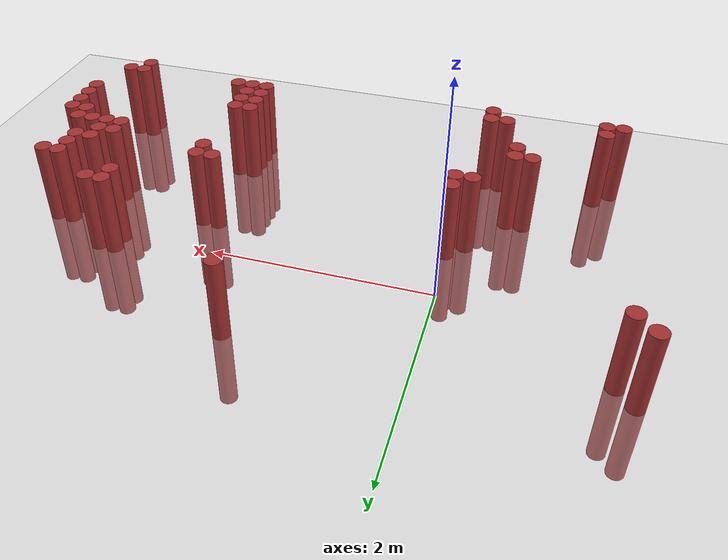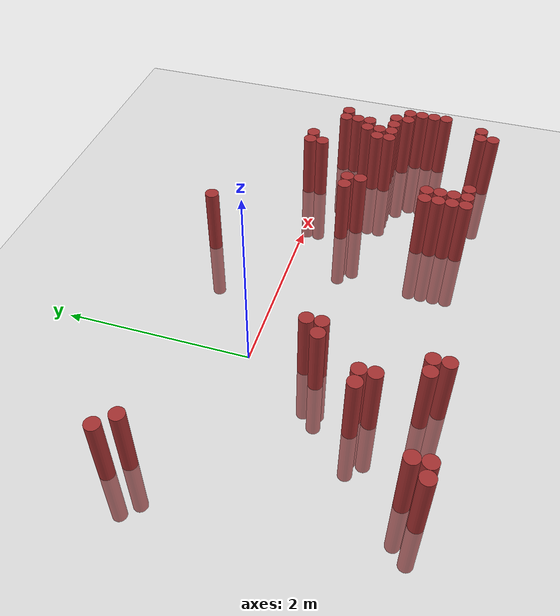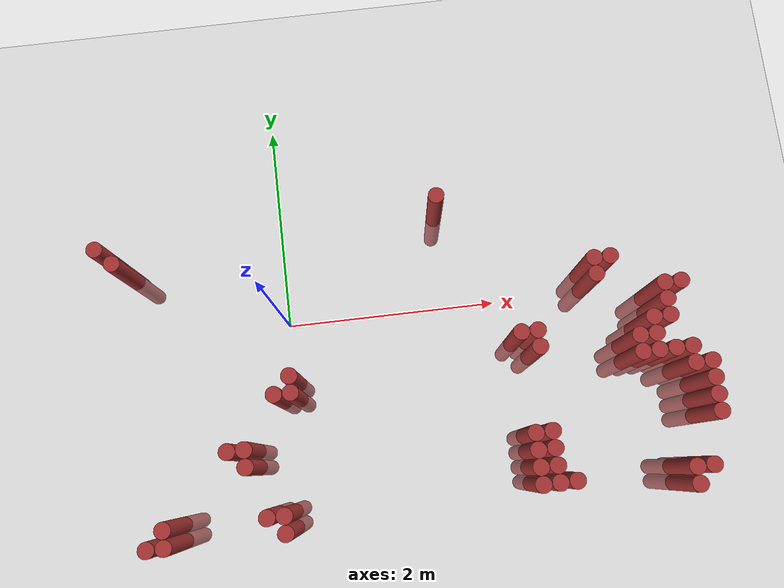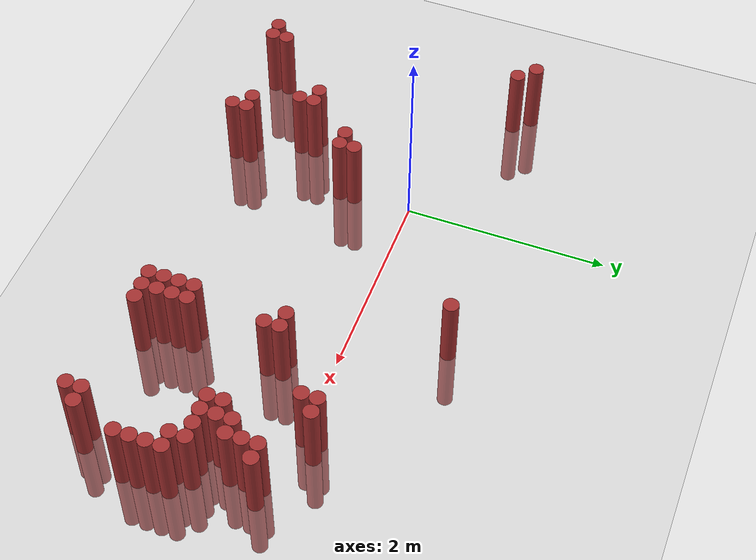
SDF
<sdf version="1.6">
 <world name="default">
  <model name="ground_plane">
   <static>1</static>
   <link name="link">
    <collision name="collision">
     <geometry><plane><normal>0 0 1</normal><size>100 100</size></plane></geometry>
     <surface><friction><ode><mu>100</mu><mu2>50</mu2></ode></friction></surface>
    </collision>
    <visual name="visual">
     <cast_shadows>0</cast_shadows>
     <geometry><plane><normal>0 0 1</normal><size>100 100</size></plane></geometry>
     <material>
      <script><uri>file://media/materials/scripts/gazebo.material</uri><name>Gazebo/Grey</name></script>
     </material>
    </visual>
   </link>
  </model>
  <model name="unit_cylinder_315">
   <static>1</static>
   <pose>-1.625000 0.775000 0.000000 0.000000 0.000000 0.000000</pose>
   <link name="link">
    <inertial>
     <mass>1</mass>
     <inertia><ixx>0.145833</ixx><ixy>0</ixy><ixz>0</ixz><iyy>0.145833</iyy><iyz>0</iyz><izz>0.125</izz></inertia>
    </inertial>
    <collision name="collision">
     <geometry><cylinder><radius>0.075000</radius><length>1.5</length></cylinder></geometry>
    </collision>
    <visual name="visual">
     <geometry><cylinder><radius>0.075000</radius><length>1.5</length></cylinder></geometry>
     <material>
      <ambient>0.648000 0.192000 0.192000 1</ambient>
      <diffuse>0.648000 0.192000 0.192000 1</diffuse>
     </material>
     <material>
      <script><name>Gazebo/Grey</name><uri>file://media/materials/scripts/gazebo.material</uri></script>
     </material>
    </visual>
   </link>
  </model>
  <model name="unit_cylinder_316">
   <static>1</static>
   <pose>-1.475000 0.625000 0.000000 0.000000 0.000000 0.000000</pose>
   <link name="link">
    <inertial>
     <mass>1</mass>
     <inertia><ixx>0.145833</ixx><ixy>0</ixy><ixz>0</ixz><iyy>0.145833</iyy><iyz>0</iyz><izz>0.125</izz></inertia>
    </inertial>
    <collision name="collision">
     <geometry><cylinder><radius>0.075000</radius><length>1.5</length></cylinder></geometry>
    </collision>
    <visual name="visual">
     <geometry><cylinder><radius>0.075000</radius><length>1.5</length></cylinder></geometry>
     <material>
      <ambient>0.648000 0.192000 0.192000 1</ambient>
      <diffuse>0.648000 0.192000 0.192000 1</diffuse>
     </material>
     <material>
      <script><name>Gazebo/Grey</name><uri>file://media/materials/scripts/gazebo.material</uri></script>
     </material>
    </visual>
   </link>
  </model>
  <model name="unit_cylinder_318">
   <static>1</static>
   <pose>-1.325000 -1.925000 0.000000 0.000000 0.000000 0.000000</pose>
   <link name="link">
    <inertial>
     <mass>1</mass>
     <inertia><ixx>0.145833</ixx><ixy>0</ixy><ixz>0</ixz><iyy>0.145833</iyy><iyz>0</iyz><izz>0.125</izz></inertia>
    </inertial>
    <collision name="collision">
     <geometry><cylinder><radius>0.075000</radius><length>1.5</length></cylinder></geometry>
    </collision>
    <visual name="visual">
     <geometry><cylinder><radius>0.075000</radius><length>1.5</length></cylinder></geometry>
     <material>
      <ambient>0.648000 0.192000 0.192000 1</ambient>
      <diffuse>0.648000 0.192000 0.192000 1</diffuse>
     </material>
     <material>
      <script><name>Gazebo/Grey</name><uri>file://media/materials/scripts/gazebo.material</uri></script>
     </material>
    </visual>
   </link>
  </model>
  <model name="unit_cylinder_324">
   <static>1</static>
   <pose>-1.175000 -1.925000 0.000000 0.000000 0.000000 0.000000</pose>
   <link name="link">
    <inertial>
     <mass>1</mass>
     <inertia><ixx>0.145833</ixx><ixy>0</ixy><ixz>0</ixz><iyy>0.145833</iyy><iyz>0</iyz><izz>0.125</izz></inertia>
    </inertial>
    <collision name="collision">
     <geometry><cylinder><radius>0.075000</radius><length>1.5</length></cylinder></geometry>
    </collision>
    <visual name="visual">
     <geometry><cylinder><radius>0.075000</radius><length>1.5</length></cylinder></geometry>
     <material>
      <ambient>0.648000 0.192000 0.192000 1</ambient>
      <diffuse>0.648000 0.192000 0.192000 1</diffuse>
     </material>
     <material>
      <script><name>Gazebo/Grey</name><uri>file://media/materials/scripts/gazebo.material</uri></script>
     </material>
    </visual>
   </link>
  </model>
  <model name="unit_cylinder_325">
   <static>1</static>
   <pose>-1.175000 -1.775000 0.000000 0.000000 0.000000 0.000000</pose>
   <link name="link">
    <inertial>
     <mass>1</mass>
     <inertia><ixx>0.145833</ixx><ixy>0</ixy><ixz>0</ixz><iyy>0.145833</iyy><iyz>0</iyz><izz>0.125</izz></inertia>
    </inertial>
    <collision name="collision">
     <geometry><cylinder><radius>0.075000</radius><length>1.5</length></cylinder></geometry>
    </collision>
    <visual name="visual">
     <geometry><cylinder><radius>0.075000</radius><length>1.5</length></cylinder></geometry>
     <material>
      <ambient>0.648000 0.192000 0.192000 1</ambient>
      <diffuse>0.648000 0.192000 0.192000 1</diffuse>
     </material>
     <material>
      <script><name>Gazebo/Grey</name><uri>file://media/materials/scripts/gazebo.material</uri></script>
     </material>
    </visual>
   </link>
  </model>
  <model name="unit_cylinder_335">
   <static>1</static>
   <pose>-0.575000 -1.175000 0.000000 0.000000 0.000000 0.000000</pose>
   <link name="link">
    <inertial>
     <mass>1</mass>
     <inertia><ixx>0.145833</ixx><ixy>0</ixy><ixz>0</ixz><iyy>0.145833</iyy><iyz>0</iyz><izz>0.125</izz></inertia>
    </inertial>
    <collision name="collision">
     <geometry><cylinder><radius>0.075000</radius><length>1.5</length></cylinder></geometry>
    </collision>
    <visual name="visual">
     <geometry><cylinder><radius>0.075000</radius><length>1.5</length></cylinder></geometry>
     <material>
      <ambient>0.648000 0.192000 0.192000 1</ambient>
      <diffuse>0.648000 0.192000 0.192000 1</diffuse>
     </material>
     <material>
      <script><name>Gazebo/Grey</name><uri>file://media/materials/scripts/gazebo.material</uri></script>
     </material>
    </visual>
   </link>
  </model>
  <model name="unit_cylinder_337">
   <static>1</static>
   <pose>-0.425000 -1.325000 0.000000 0.000000 0.000000 0.000000</pose>
   <link name="link">
    <inertial>
     <mass>1</mass>
     <inertia><ixx>0.145833</ixx><ixy>0</ixy><ixz>0</ixz><iyy>0.145833</iyy><iyz>0</iyz><izz>0.125</izz></inertia>
    </inertial>
    <collision name="collision">
     <geometry><cylinder><radius>0.075000</radius><length>1.5</length></cylinder></geometry>
    </collision>
    <visual name="visual">
     <geometry><cylinder><radius>0.075000</radius><length>1.5</length></cylinder></geometry>
     <material>
      <ambient>0.648000 0.192000 0.192000 1</ambient>
      <diffuse>0.648000 0.192000 0.192000 1</diffuse>
     </material>
     <material>
      <script><name>Gazebo/Grey</name><uri>file://media/materials/scripts/gazebo.material</uri></script>
     </material>
    </visual>
   </link>
  </model>
  <model name="unit_cylinder_338">
   <static>1</static>
   <pose>-0.425000 -1.175000 0.000000 0.000000 0.000000 0.000000</pose>
   <link name="link">
    <inertial>
     <mass>1</mass>
     <inertia><ixx>0.145833</ixx><ixy>0</ixy><ixz>0</ixz><iyy>0.145833</iyy><iyz>0</iyz><izz>0.125</izz></inertia>
    </inertial>
    <collision name="collision">
     <geometry><cylinder><radius>0.075000</radius><length>1.5</length></cylinder></geometry>
    </collision>
    <visual name="visual">
     <geometry><cylinder><radius>0.075000</radius><length>1.5</length></cylinder></geometry>
     <material>
      <ambient>0.648000 0.192000 0.192000 1</ambient>
      <diffuse>0.648000 0.192000 0.192000 1</diffuse>
     </material>
     <material>
      <script><name>Gazebo/Grey</name><uri>file://media/materials/scripts/gazebo.material</uri></script>
     </material>
    </visual>
   </link>
  </model>
  <model name="unit_cylinder_343">
   <static>1</static>
   <pose>-0.275000 -1.775000 0.000000 0.000000 0.000000 0.000000</pose>
   <link name="link">
    <inertial>
     <mass>1</mass>
     <inertia><ixx>0.145833</ixx><ixy>0</ixy><ixz>0</ixz><iyy>0.145833</iyy><iyz>0</iyz><izz>0.125</izz></inertia>
    </inertial>
    <collision name="collision">
     <geometry><cylinder><radius>0.075000</radius><length>1.5</length></cylinder></geometry>
    </collision>
    <visual name="visual">
     <geometry><cylinder><radius>0.075000</radius><length>1.5</length></cylinder></geometry>
     <material>
      <ambient>0.648000 0.192000 0.192000 1</ambient>
      <diffuse>0.648000 0.192000 0.192000 1</diffuse>
     </material>
     <material>
      <script><name>Gazebo/Grey</name><uri>file://media/materials/scripts/gazebo.material</uri></script>
     </material>
    </visual>
   </link>
  </model>
  <model name="unit_cylinder_346">
   <static>1</static>
   <pose>-0.125000 -1.925000 0.000000 0.000000 0.000000 0.000000</pose>
   <link name="link">
    <inertial>
     <mass>1</mass>
     <inertia><ixx>0.145833</ixx><ixy>0</ixy><ixz>0</ixz><iyy>0.145833</iyy><iyz>0</iyz><izz>0.125</izz></inertia>
    </inertial>
    <collision name="collision">
     <geometry><cylinder><radius>0.075000</radius><length>1.5</length></cylinder></geometry>
    </collision>
    <visual name="visual">
     <geometry><cylinder><radius>0.075000</radius><length>1.5</length></cylinder></geometry>
     <material>
      <ambient>0.648000 0.192000 0.192000 1</ambient>
      <diffuse>0.648000 0.192000 0.192000 1</diffuse>
     </material>
     <material>
      <script><name>Gazebo/Grey</name><uri>file://media/materials/scripts/gazebo.material</uri></script>
     </material>
    </visual>
   </link>
  </model>
  <model name="unit_cylinder_347">
   <static>1</static>
   <pose>-0.125000 -1.775000 0.000000 0.000000 0.000000 0.000000</pose>
   <link name="link">
    <inertial>
     <mass>1</mass>
     <inertia><ixx>0.145833</ixx><ixy>0</ixy><ixz>0</ixz><iyy>0.145833</iyy><iyz>0</iyz><izz>0.125</izz></inertia>
    </inertial>
    <collision name="collision">
     <geometry><cylinder><radius>0.075000</radius><length>1.5</length></cylinder></geometry>
    </collision>
    <visual name="visual">
     <geometry><cylinder><radius>0.075000</radius><length>1.5</length></cylinder></geometry>
     <material>
      <ambient>0.648000 0.192000 0.192000 1</ambient>
      <diffuse>0.648000 0.192000 0.192000 1</diffuse>
     </material>
     <material>
      <script><name>Gazebo/Grey</name><uri>file://media/materials/scripts/gazebo.material</uri></script>
     </material>
    </visual>
   </link>
  </model>
  <model name="unit_cylinder_348">
   <static>1</static>
   <pose>-0.125000 -0.725000 0.000000 0.000000 0.000000 0.000000</pose>
   <link name="link">
    <inertial>
     <mass>1</mass>
     <inertia><ixx>0.145833</ixx><ixy>0</ixy><ixz>0</ixz><iyy>0.145833</iyy><iyz>0</iyz><izz>0.125</izz></inertia>
    </inertial>
    <collision name="collision">
     <geometry><cylinder><radius>0.075000</radius><length>1.5</length></cylinder></geometry>
    </collision>
    <visual name="visual">
     <geometry><cylinder><radius>0.075000</radius><length>1.5</length></cylinder></geometry>
     <material>
      <ambient>0.648000 0.192000 0.192000 1</ambient>
      <diffuse>0.648000 0.192000 0.192000 1</diffuse>
     </material>
     <material>
      <script><name>Gazebo/Grey</name><uri>file://media/materials/scripts/gazebo.material</uri></script>
     </material>
    </visual>
   </link>
  </model>
  <model name="unit_cylinder_354">
   <static>1</static>
   <pose>0.025000 -0.725000 0.000000 0.000000 0.000000 0.000000</pose>
   <link name="link">
    <inertial>
     <mass>1</mass>
     <inertia><ixx>0.145833</ixx><ixy>0</ixy><ixz>0</ixz><iyy>0.145833</iyy><iyz>0</iyz><izz>0.125</izz></inertia>
    </inertial>
    <collision name="collision">
     <geometry><cylinder><radius>0.075000</radius><length>1.5</length></cylinder></geometry>
    </collision>
    <visual name="visual">
     <geometry><cylinder><radius>0.075000</radius><length>1.5</length></cylinder></geometry>
     <material>
      <ambient>0.648000 0.192000 0.192000 1</ambient>
      <diffuse>0.648000 0.192000 0.192000 1</diffuse>
     </material>
     <material>
      <script><name>Gazebo/Grey</name><uri>file://media/materials/scripts/gazebo.material</uri></script>
     </material>
    </visual>
   </link>
  </model>
  <model name="unit_cylinder_355">
   <static>1</static>
   <pose>0.025000 -0.575000 0.000000 0.000000 0.000000 0.000000</pose>
   <link name="link">
    <inertial>
     <mass>1</mass>
     <inertia><ixx>0.145833</ixx><ixy>0</ixy><ixz>0</ixz><iyy>0.145833</iyy><iyz>0</iyz><izz>0.125</izz></inertia>
    </inertial>
    <collision name="collision">
     <geometry><cylinder><radius>0.075000</radius><length>1.5</length></cylinder></geometry>
    </collision>
    <visual name="visual">
     <geometry><cylinder><radius>0.075000</radius><length>1.5</length></cylinder></geometry>
     <material>
      <ambient>0.648000 0.192000 0.192000 1</ambient>
      <diffuse>0.648000 0.192000 0.192000 1</diffuse>
     </material>
     <material>
      <script><name>Gazebo/Grey</name><uri>file://media/materials/scripts/gazebo.material</uri></script>
     </material>
    </visual>
   </link>
  </model>
  <model name="unit_cylinder_372">
   <static>1</static>
   <pose>1.525000 0.925000 0.000000 0.000000 0.000000 0.000000</pose>
   <link name="link">
    <inertial>
     <mass>1</mass>
     <inertia><ixx>0.145833</ixx><ixy>0</ixy><ixz>0</ixz><iyy>0.145833</iyy><iyz>0</iyz><izz>0.125</izz></inertia>
    </inertial>
    <collision name="collision">
     <geometry><cylinder><radius>0.075000</radius><length>1.5</length></cylinder></geometry>
    </collision>
    <visual name="visual">
     <geometry><cylinder><radius>0.075000</radius><length>1.5</length></cylinder></geometry>
     <material>
      <ambient>0.648000 0.192000 0.192000 1</ambient>
      <diffuse>0.648000 0.192000 0.192000 1</diffuse>
     </material>
     <material>
      <script><name>Gazebo/Grey</name><uri>file://media/materials/scripts/gazebo.material</uri></script>
     </material>
    </visual>
   </link>
  </model>
  <model name="unit_cylinder_380">
   <static>1</static>
   <pose>2.125000 -1.775000 0.000000 0.000000 0.000000 0.000000</pose>
   <link name="link">
    <inertial>
     <mass>1</mass>
     <inertia><ixx>0.145833</ixx><ixy>0</ixy><ixz>0</ixz><iyy>0.145833</iyy><iyz>0</iyz><izz>0.125</izz></inertia>
    </inertial>
    <collision name="collision">
     <geometry><cylinder><radius>0.075000</radius><length>1.5</length></cylinder></geometry>
    </collision>
    <visual name="visual">
     <geometry><cylinder><radius>0.075000</radius><length>1.5</length></cylinder></geometry>
     <material>
      <ambient>0.648000 0.192000 0.192000 1</ambient>
      <diffuse>0.648000 0.192000 0.192000 1</diffuse>
     </material>
     <material>
      <script><name>Gazebo/Grey</name><uri>file://media/materials/scripts/gazebo.material</uri></script>
     </material>
    </visual>
   </link>
  </model>
  <model name="unit_cylinder_381">
   <static>1</static>
   <pose>2.125000 -1.625000 0.000000 0.000000 0.000000 0.000000</pose>
   <link name="link">
    <inertial>
     <mass>1</mass>
     <inertia><ixx>0.145833</ixx><ixy>0</ixy><ixz>0</ixz><iyy>0.145833</iyy><iyz>0</iyz><izz>0.125</izz></inertia>
    </inertial>
    <collision name="collision">
     <geometry><cylinder><radius>0.075000</radius><length>1.5</length></cylinder></geometry>
    </collision>
    <visual name="visual">
     <geometry><cylinder><radius>0.075000</radius><length>1.5</length></cylinder></geometry>
     <material>
      <ambient>0.648000 0.192000 0.192000 1</ambient>
      <diffuse>0.648000 0.192000 0.192000 1</diffuse>
     </material>
     <material>
      <script><name>Gazebo/Grey</name><uri>file://media/materials/scripts/gazebo.material</uri></script>
     </material>
    </visual>
   </link>
  </model>
  <model name="unit_cylinder_382">
   <static>1</static>
   <pose>2.125000 -1.475000 0.000000 0.000000 0.000000 0.000000</pose>
   <link name="link">
    <inertial>
     <mass>1</mass>
     <inertia><ixx>0.145833</ixx><ixy>0</ixy><ixz>0</ixz><iyy>0.145833</iyy><iyz>0</iyz><izz>0.125</izz></inertia>
    </inertial>
    <collision name="collision">
     <geometry><cylinder><radius>0.075000</radius><length>1.5</length></cylinder></geometry>
    </collision>
    <visual name="visual">
     <geometry><cylinder><radius>0.075000</radius><length>1.5</length></cylinder></geometry>
     <material>
      <ambient>0.648000 0.192000 0.192000 1</ambient>
      <diffuse>0.648000 0.192000 0.192000 1</diffuse>
     </material>
     <material>
      <script><name>Gazebo/Grey</name><uri>file://media/materials/scripts/gazebo.material</uri></script>
     </material>
    </visual>
   </link>
  </model>
  <model name="unit_cylinder_383">
   <static>1</static>
   <pose>2.125000 -1.325000 0.000000 0.000000 0.000000 0.000000</pose>
   <link name="link">
    <inertial>
     <mass>1</mass>
     <inertia><ixx>0.145833</ixx><ixy>0</ixy><ixz>0</ixz><iyy>0.145833</iyy><iyz>0</iyz><izz>0.125</izz></inertia>
    </inertial>
    <collision name="collision">
     <geometry><cylinder><radius>0.075000</radius><length>1.5</length></cylinder></geometry>
    </collision>
    <visual name="visual">
     <geometry><cylinder><radius>0.075000</radius><length>1.5</length></cylinder></geometry>
     <material>
      <ambient>0.648000 0.192000 0.192000 1</ambient>
      <diffuse>0.648000 0.192000 0.192000 1</diffuse>
     </material>
     <material>
      <script><name>Gazebo/Grey</name><uri>file://media/materials/scripts/gazebo.material</uri></script>
     </material>
    </visual>
   </link>
  </model>
  <model name="unit_cylinder_384">
   <static>1</static>
   <pose>2.125000 -0.425000 0.000000 0.000000 0.000000 0.000000</pose>
   <link name="link">
    <inertial>
     <mass>1</mass>
     <inertia><ixx>0.145833</ixx><ixy>0</ixy><ixz>0</ixz><iyy>0.145833</iyy><iyz>0</iyz><izz>0.125</izz></inertia>
    </inertial>
    <collision name="collision">
     <geometry><cylinder><radius>0.075000</radius><length>1.5</length></cylinder></geometry>
    </collision>
    <visual name="visual">
     <geometry><cylinder><radius>0.075000</radius><length>1.5</length></cylinder></geometry>
     <material>
      <ambient>0.648000 0.192000 0.192000 1</ambient>
      <diffuse>0.648000 0.192000 0.192000 1</diffuse>
     </material>
     <material>
      <script><name>Gazebo/Grey</name><uri>file://media/materials/scripts/gazebo.material</uri></script>
     </material>
    </visual>
   </link>
  </model>
  <model name="unit_cylinder_387">
   <static>1</static>
   <pose>2.275000 -1.775000 0.000000 0.000000 0.000000 0.000000</pose>
   <link name="link">
    <inertial>
     <mass>1</mass>
     <inertia><ixx>0.145833</ixx><ixy>0</ixy><ixz>0</ixz><iyy>0.145833</iyy><iyz>0</iyz><izz>0.125</izz></inertia>
    </inertial>
    <collision name="collision">
     <geometry><cylinder><radius>0.075000</radius><length>1.5</length></cylinder></geometry>
    </collision>
    <visual name="visual">
     <geometry><cylinder><radius>0.075000</radius><length>1.5</length></cylinder></geometry>
     <material>
      <ambient>0.648000 0.192000 0.192000 1</ambient>
      <diffuse>0.648000 0.192000 0.192000 1</diffuse>
     </material>
     <material>
      <script><name>Gazebo/Grey</name><uri>file://media/materials/scripts/gazebo.material</uri></script>
     </material>
    </visual>
   </link>
  </model>
  <model name="unit_cylinder_388">
   <static>1</static>
   <pose>2.275000 -1.625000 0.000000 0.000000 0.000000 0.000000</pose>
   <link name="link">
    <inertial>
     <mass>1</mass>
     <inertia><ixx>0.145833</ixx><ixy>0</ixy><ixz>0</ixz><iyy>0.145833</iyy><iyz>0</iyz><izz>0.125</izz></inertia>
    </inertial>
    <collision name="collision">
     <geometry><cylinder><radius>0.075000</radius><length>1.5</length></cylinder></geometry>
    </collision>
    <visual name="visual">
     <geometry><cylinder><radius>0.075000</radius><length>1.5</length></cylinder></geometry>
     <material>
      <ambient>0.648000 0.192000 0.192000 1</ambient>
      <diffuse>0.648000 0.192000 0.192000 1</diffuse>
     </material>
     <material>
      <script><name>Gazebo/Grey</name><uri>file://media/materials/scripts/gazebo.material</uri></script>
     </material>
    </visual>
   </link>
  </model>
  <model name="unit_cylinder_389">
   <static>1</static>
   <pose>2.275000 -1.475000 0.000000 0.000000 0.000000 0.000000</pose>
   <link name="link">
    <inertial>
     <mass>1</mass>
     <inertia><ixx>0.145833</ixx><ixy>0</ixy><ixz>0</ixz><iyy>0.145833</iyy><iyz>0</iyz><izz>0.125</izz></inertia>
    </inertial>
    <collision name="collision">
     <geometry><cylinder><radius>0.075000</radius><length>1.5</length></cylinder></geometry>
    </collision>
    <visual name="visual">
     <geometry><cylinder><radius>0.075000</radius><length>1.5</length></cylinder></geometry>
     <material>
      <ambient>0.648000 0.192000 0.192000 1</ambient>
      <diffuse>0.648000 0.192000 0.192000 1</diffuse>
     </material>
     <material>
      <script><name>Gazebo/Grey</name><uri>file://media/materials/scripts/gazebo.material</uri></script>
     </material>
    </visual>
   </link>
  </model>
  <model name="unit_cylinder_390">
   <static>1</static>
   <pose>2.275000 -1.325000 0.000000 0.000000 0.000000 0.000000</pose>
   <link name="link">
    <inertial>
     <mass>1</mass>
     <inertia><ixx>0.145833</ixx><ixy>0</ixy><ixz>0</ixz><iyy>0.145833</iyy><iyz>0</iyz><izz>0.125</izz></inertia>
    </inertial>
    <collision name="collision">
     <geometry><cylinder><radius>0.075000</radius><length>1.5</length></cylinder></geometry>
    </collision>
    <visual name="visual">
     <geometry><cylinder><radius>0.075000</radius><length>1.5</length></cylinder></geometry>
     <material>
      <ambient>0.648000 0.192000 0.192000 1</ambient>
      <diffuse>0.648000 0.192000 0.192000 1</diffuse>
     </material>
     <material>
      <script><name>Gazebo/Grey</name><uri>file://media/materials/scripts/gazebo.material</uri></script>
     </material>
    </visual>
   </link>
  </model>
  <model name="unit_cylinder_391">
   <static>1</static>
   <pose>2.275000 -0.575000 0.000000 0.000000 0.000000 0.000000</pose>
   <link name="link">
    <inertial>
     <mass>1</mass>
     <inertia><ixx>0.145833</ixx><ixy>0</ixy><ixz>0</ixz><iyy>0.145833</iyy><iyz>0</iyz><izz>0.125</izz></inertia>
    </inertial>
    <collision name="collision">
     <geometry><cylinder><radius>0.075000</radius><length>1.5</length></cylinder></geometry>
    </collision>
    <visual name="visual">
     <geometry><cylinder><radius>0.075000</radius><length>1.5</length></cylinder></geometry>
     <material>
      <ambient>0.648000 0.192000 0.192000 1</ambient>
      <diffuse>0.648000 0.192000 0.192000 1</diffuse>
     </material>
     <material>
      <script><name>Gazebo/Grey</name><uri>file://media/materials/scripts/gazebo.material</uri></script>
     </material>
    </visual>
   </link>
  </model>
  <model name="unit_cylinder_392">
   <static>1</static>
   <pose>2.275000 -0.425000 0.000000 0.000000 0.000000 0.000000</pose>
   <link name="link">
    <inertial>
     <mass>1</mass>
     <inertia><ixx>0.145833</ixx><ixy>0</ixy><ixz>0</ixz><iyy>0.145833</iyy><iyz>0</iyz><izz>0.125</izz></inertia>
    </inertial>
    <collision name="collision">
     <geometry><cylinder><radius>0.075000</radius><length>1.5</length></cylinder></geometry>
    </collision>
    <visual name="visual">
     <geometry><cylinder><radius>0.075000</radius><length>1.5</length></cylinder></geometry>
     <material>
      <ambient>0.648000 0.192000 0.192000 1</ambient>
      <diffuse>0.648000 0.192000 0.192000 1</diffuse>
     </material>
     <material>
      <script><name>Gazebo/Grey</name><uri>file://media/materials/scripts/gazebo.material</uri></script>
     </material>
    </visual>
   </link>
  </model>
  <model name="unit_cylinder_395">
   <static>1</static>
   <pose>2.425000 -1.775000 0.000000 0.000000 0.000000 0.000000</pose>
   <link name="link">
    <inertial>
     <mass>1</mass>
     <inertia><ixx>0.145833</ixx><ixy>0</ixy><ixz>0</ixz><iyy>0.145833</iyy><iyz>0</iyz><izz>0.125</izz></inertia>
    </inertial>
    <collision name="collision">
     <geometry><cylinder><radius>0.075000</radius><length>1.5</length></cylinder></geometry>
    </collision>
    <visual name="visual">
     <geometry><cylinder><radius>0.075000</radius><length>1.5</length></cylinder></geometry>
     <material>
      <ambient>0.648000 0.192000 0.192000 1</ambient>
      <diffuse>0.648000 0.192000 0.192000 1</diffuse>
     </material>
     <material>
      <script><name>Gazebo/Grey</name><uri>file://media/materials/scripts/gazebo.material</uri></script>
     </material>
    </visual>
   </link>
  </model>
  <model name="unit_cylinder_396">
   <static>1</static>
   <pose>2.875000 0.025000 0.000000 0.000000 0.000000 0.000000</pose>
   <link name="link">
    <inertial>
     <mass>1</mass>
     <inertia><ixx>0.145833</ixx><ixy>0</ixy><ixz>0</ixz><iyy>0.145833</iyy><iyz>0</iyz><izz>0.125</izz></inertia>
    </inertial>
    <collision name="collision">
     <geometry><cylinder><radius>0.075000</radius><length>1.5</length></cylinder></geometry>
    </collision>
    <visual name="visual">
     <geometry><cylinder><radius>0.075000</radius><length>1.5</length></cylinder></geometry>
     <material>
      <ambient>0.648000 0.192000 0.192000 1</ambient>
      <diffuse>0.648000 0.192000 0.192000 1</diffuse>
     </material>
     <material>
      <script><name>Gazebo/Grey</name><uri>file://media/materials/scripts/gazebo.material</uri></script>
     </material>
    </visual>
   </link>
  </model>
  <model name="unit_cylinder_397">
   <static>1</static>
   <pose>2.875000 0.175000 0.000000 0.000000 0.000000 0.000000</pose>
   <link name="link">
    <inertial>
     <mass>1</mass>
     <inertia><ixx>0.145833</ixx><ixy>0</ixy><ixz>0</ixz><iyy>0.145833</iyy><iyz>0</iyz><izz>0.125</izz></inertia>
    </inertial>
    <collision name="collision">
     <geometry><cylinder><radius>0.075000</radius><length>1.5</length></cylinder></geometry>
    </collision>
    <visual name="visual">
     <geometry><cylinder><radius>0.075000</radius><length>1.5</length></cylinder></geometry>
     <material>
      <ambient>0.648000 0.192000 0.192000 1</ambient>
      <diffuse>0.648000 0.192000 0.192000 1</diffuse>
     </material>
     <material>
      <script><name>Gazebo/Grey</name><uri>file://media/materials/scripts/gazebo.material</uri></script>
     </material>
    </visual>
   </link>
  </model>
  <model name="unit_cylinder_398">
   <static>1</static>
   <pose>3.025000 0.175000 0.000000 0.000000 0.000000 0.000000</pose>
   <link name="link">
    <inertial>
     <mass>1</mass>
     <inertia><ixx>0.145833</ixx><ixy>0</ixy><ixz>0</ixz><iyy>0.145833</iyy><iyz>0</iyz><izz>0.125</izz></inertia>
    </inertial>
    <collision name="collision">
     <geometry><cylinder><radius>0.075000</radius><length>1.5</length></cylinder></geometry>
    </collision>
    <visual name="visual">
     <geometry><cylinder><radius>0.075000</radius><length>1.5</length></cylinder></geometry>
     <material>
      <ambient>0.648000 0.192000 0.192000 1</ambient>
      <diffuse>0.648000 0.192000 0.192000 1</diffuse>
     </material>
     <material>
      <script><name>Gazebo/Grey</name><uri>file://media/materials/scripts/gazebo.material</uri></script>
     </material>
    </visual>
   </link>
  </model>
  <model name="unit_cylinder_399">
   <static>1</static>
   <pose>3.175000 -0.725000 0.000000 0.000000 0.000000 0.000000</pose>
   <link name="link">
    <inertial>
     <mass>1</mass>
     <inertia><ixx>0.145833</ixx><ixy>0</ixy><ixz>0</ixz><iyy>0.145833</iyy><iyz>0</iyz><izz>0.125</izz></inertia>
    </inertial>
    <collision name="collision">
     <geometry><cylinder><radius>0.075000</radius><length>1.5</length></cylinder></geometry>
    </collision>
    <visual name="visual">
     <geometry><cylinder><radius>0.075000</radius><length>1.5</length></cylinder></geometry>
     <material>
      <ambient>0.648000 0.192000 0.192000 1</ambient>
      <diffuse>0.648000 0.192000 0.192000 1</diffuse>
     </material>
     <material>
      <script><name>Gazebo/Grey</name><uri>file://media/materials/scripts/gazebo.material</uri></script>
     </material>
    </visual>
   </link>
  </model>
  <model name="unit_cylinder_400">
   <static>1</static>
   <pose>3.175000 -0.575000 0.000000 0.000000 0.000000 0.000000</pose>
   <link name="link">
    <inertial>
     <mass>1</mass>
     <inertia><ixx>0.145833</ixx><ixy>0</ixy><ixz>0</ixz><iyy>0.145833</iyy><iyz>0</iyz><izz>0.125</izz></inertia>
    </inertial>
    <collision name="collision">
     <geometry><cylinder><radius>0.075000</radius><length>1.5</length></cylinder></geometry>
    </collision>
    <visual name="visual">
     <geometry><cylinder><radius>0.075000</radius><length>1.5</length></cylinder></geometry>
     <material>
      <ambient>0.648000 0.192000 0.192000 1</ambient>
      <diffuse>0.648000 0.192000 0.192000 1</diffuse>
     </material>
     <material>
      <script><name>Gazebo/Grey</name><uri>file://media/materials/scripts/gazebo.material</uri></script>
     </material>
    </visual>
   </link>
  </model>
  <model name="unit_cylinder_401">
   <static>1</static>
   <pose>3.325000 -0.725000 0.000000 0.000000 0.000000 0.000000</pose>
   <link name="link">
    <inertial>
     <mass>1</mass>
     <inertia><ixx>0.145833</ixx><ixy>0</ixy><ixz>0</ixz><iyy>0.145833</iyy><iyz>0</iyz><izz>0.125</izz></inertia>
    </inertial>
    <collision name="collision">
     <geometry><cylinder><radius>0.075000</radius><length>1.5</length></cylinder></geometry>
    </collision>
    <visual name="visual">
     <geometry><cylinder><radius>0.075000</radius><length>1.5</length></cylinder></geometry>
     <material>
      <ambient>0.648000 0.192000 0.192000 1</ambient>
      <diffuse>0.648000 0.192000 0.192000 1</diffuse>
     </material>
     <material>
      <script><name>Gazebo/Grey</name><uri>file://media/materials/scripts/gazebo.material</uri></script>
     </material>
    </visual>
   </link>
  </model>
  <model name="unit_cylinder_402">
   <static>1</static>
   <pose>3.325000 -0.575000 0.000000 0.000000 0.000000 0.000000</pose>
   <link name="link">
    <inertial>
     <mass>1</mass>
     <inertia><ixx>0.145833</ixx><ixy>0</ixy><ixz>0</ixz><iyy>0.145833</iyy><iyz>0</iyz><izz>0.125</izz></inertia>
    </inertial>
    <collision name="collision">
     <geometry><cylinder><radius>0.075000</radius><length>1.5</length></cylinder></geometry>
    </collision>
    <visual name="visual">
     <geometry><cylinder><radius>0.075000</radius><length>1.5</length></cylinder></geometry>
     <material>
      <ambient>0.648000 0.192000 0.192000 1</ambient>
      <diffuse>0.648000 0.192000 0.192000 1</diffuse>
     </material>
     <material>
      <script><name>Gazebo/Grey</name><uri>file://media/materials/scripts/gazebo.material</uri></script>
     </material>
    </visual>
   </link>
  </model>
  <model name="unit_cylinder_403">
   <static>1</static>
   <pose>3.325000 -0.425000 0.000000 0.000000 0.000000 0.000000</pose>
   <link name="link">
    <inertial>
     <mass>1</mass>
     <inertia><ixx>0.145833</ixx><ixy>0</ixy><ixz>0</ixz><iyy>0.145833</iyy><iyz>0</iyz><izz>0.125</izz></inertia>
    </inertial>
    <collision name="collision">
     <geometry><cylinder><radius>0.075000</radius><length>1.5</length></cylinder></geometry>
    </collision>
    <visual name="visual">
     <geometry><cylinder><radius>0.075000</radius><length>1.5</length></cylinder></geometry>
     <material>
      <ambient>0.648000 0.192000 0.192000 1</ambient>
      <diffuse>0.648000 0.192000 0.192000 1</diffuse>
     </material>
     <material>
      <script><name>Gazebo/Grey</name><uri>file://media/materials/scripts/gazebo.material</uri></script>
     </material>
    </visual>
   </link>
  </model>
  <model name="unit_cylinder_404">
   <static>1</static>
   <pose>3.475000 -1.925000 0.000000 0.000000 0.000000 0.000000</pose>
   <link name="link">
    <inertial>
     <mass>1</mass>
     <inertia><ixx>0.145833</ixx><ixy>0</ixy><ixz>0</ixz><iyy>0.145833</iyy><iyz>0</iyz><izz>0.125</izz></inertia>
    </inertial>
    <collision name="collision">
     <geometry><cylinder><radius>0.075000</radius><length>1.5</length></cylinder></geometry>
    </collision>
    <visual name="visual">
     <geometry><cylinder><radius>0.075000</radius><length>1.5</length></cylinder></geometry>
     <material>
      <ambient>0.648000 0.192000 0.192000 1</ambient>
      <diffuse>0.648000 0.192000 0.192000 1</diffuse>
     </material>
     <material>
      <script><name>Gazebo/Grey</name><uri>file://media/materials/scripts/gazebo.material</uri></script>
     </material>
    </visual>
   </link>
  </model>
  <model name="unit_cylinder_405">
   <static>1</static>
   <pose>3.475000 -1.775000 0.000000 0.000000 0.000000 0.000000</pose>
   <link name="link">
    <inertial>
     <mass>1</mass>
     <inertia><ixx>0.145833</ixx><ixy>0</ixy><ixz>0</ixz><iyy>0.145833</iyy><iyz>0</iyz><izz>0.125</izz></inertia>
    </inertial>
    <collision name="collision">
     <geometry><cylinder><radius>0.075000</radius><length>1.5</length></cylinder></geometry>
    </collision>
    <visual name="visual">
     <geometry><cylinder><radius>0.075000</radius><length>1.5</length></cylinder></geometry>
     <material>
      <ambient>0.648000 0.192000 0.192000 1</ambient>
      <diffuse>0.648000 0.192000 0.192000 1</diffuse>
     </material>
     <material>
      <script><name>Gazebo/Grey</name><uri>file://media/materials/scripts/gazebo.material</uri></script>
     </material>
    </visual>
   </link>
  </model>
  <model name="unit_cylinder_406">
   <static>1</static>
   <pose>3.475000 -0.725000 0.000000 0.000000 0.000000 0.000000</pose>
   <link name="link">
    <inertial>
     <mass>1</mass>
     <inertia><ixx>0.145833</ixx><ixy>0</ixy><ixz>0</ixz><iyy>0.145833</iyy><iyz>0</iyz><izz>0.125</izz></inertia>
    </inertial>
    <collision name="collision">
     <geometry><cylinder><radius>0.075000</radius><length>1.5</length></cylinder></geometry>
    </collision>
    <visual name="visual">
     <geometry><cylinder><radius>0.075000</radius><length>1.5</length></cylinder></geometry>
     <material>
      <ambient>0.648000 0.192000 0.192000 1</ambient>
      <diffuse>0.648000 0.192000 0.192000 1</diffuse>
     </material>
     <material>
      <script><name>Gazebo/Grey</name><uri>file://media/materials/scripts/gazebo.material</uri></script>
     </material>
    </visual>
   </link>
  </model>
  <model name="unit_cylinder_407">
   <static>1</static>
   <pose>3.475000 -0.425000 0.000000 0.000000 0.000000 0.000000</pose>
   <link name="link">
    <inertial>
     <mass>1</mass>
     <inertia><ixx>0.145833</ixx><ixy>0</ixy><ixz>0</ixz><iyy>0.145833</iyy><iyz>0</iyz><izz>0.125</izz></inertia>
    </inertial>
    <collision name="collision">
     <geometry><cylinder><radius>0.075000</radius><length>1.5</length></cylinder></geometry>
    </collision>
    <visual name="visual">
     <geometry><cylinder><radius>0.075000</radius><length>1.5</length></cylinder></geometry>
     <material>
      <ambient>0.648000 0.192000 0.192000 1</ambient>
      <diffuse>0.648000 0.192000 0.192000 1</diffuse>
     </material>
     <material>
      <script><name>Gazebo/Grey</name><uri>file://media/materials/scripts/gazebo.material</uri></script>
     </material>
    </visual>
   </link>
  </model>
  <model name="unit_cylinder_408">
   <static>1</static>
   <pose>3.475000 -0.275000 0.000000 0.000000 0.000000 0.000000</pose>
   <link name="link">
    <inertial>
     <mass>1</mass>
     <inertia><ixx>0.145833</ixx><ixy>0</ixy><ixz>0</ixz><iyy>0.145833</iyy><iyz>0</iyz><izz>0.125</izz></inertia>
    </inertial>
    <collision name="collision">
     <geometry><cylinder><radius>0.075000</radius><length>1.5</length></cylinder></geometry>
    </collision>
    <visual name="visual">
     <geometry><cylinder><radius>0.075000</radius><length>1.5</length></cylinder></geometry>
     <material>
      <ambient>0.648000 0.192000 0.192000 1</ambient>
      <diffuse>0.648000 0.192000 0.192000 1</diffuse>
     </material>
     <material>
      <script><name>Gazebo/Grey</name><uri>file://media/materials/scripts/gazebo.material</uri></script>
     </material>
    </visual>
   </link>
  </model>
  <model name="unit_cylinder_409">
   <static>1</static>
   <pose>3.475000 -0.125000 0.000000 0.000000 0.000000 0.000000</pose>
   <link name="link">
    <inertial>
     <mass>1</mass>
     <inertia><ixx>0.145833</ixx><ixy>0</ixy><ixz>0</ixz><iyy>0.145833</iyy><iyz>0</iyz><izz>0.125</izz></inertia>
    </inertial>
    <collision name="collision">
     <geometry><cylinder><radius>0.075000</radius><length>1.5</length></cylinder></geometry>
    </collision>
    <visual name="visual">
     <geometry><cylinder><radius>0.075000</radius><length>1.5</length></cylinder></geometry>
     <material>
      <ambient>0.648000 0.192000 0.192000 1</ambient>
      <diffuse>0.648000 0.192000 0.192000 1</diffuse>
     </material>
     <material>
      <script><name>Gazebo/Grey</name><uri>file://media/materials/scripts/gazebo.material</uri></script>
     </material>
    </visual>
   </link>
  </model>
  <model name="unit_cylinder_411">
   <static>1</static>
   <pose>3.625000 -1.775000 0.000000 0.000000 0.000000 0.000000</pose>
   <link name="link">
    <inertial>
     <mass>1</mass>
     <inertia><ixx>0.145833</ixx><ixy>0</ixy><ixz>0</ixz><iyy>0.145833</iyy><iyz>0</iyz><izz>0.125</izz></inertia>
    </inertial>
    <collision name="collision">
     <geometry><cylinder><radius>0.075000</radius><length>1.5</length></cylinder></geometry>
    </collision>
    <visual name="visual">
     <geometry><cylinder><radius>0.075000</radius><length>1.5</length></cylinder></geometry>
     <material>
      <ambient>0.648000 0.192000 0.192000 1</ambient>
      <diffuse>0.648000 0.192000 0.192000 1</diffuse>
     </material>
     <material>
      <script><name>Gazebo/Grey</name><uri>file://media/materials/scripts/gazebo.material</uri></script>
     </material>
    </visual>
   </link>
  </model>
  <model name="unit_cylinder_412">
   <static>1</static>
   <pose>3.625000 -0.875000 0.000000 0.000000 0.000000 0.000000</pose>
   <link name="link">
    <inertial>
     <mass>1</mass>
     <inertia><ixx>0.145833</ixx><ixy>0</ixy><ixz>0</ixz><iyy>0.145833</iyy><iyz>0</iyz><izz>0.125</izz></inertia>
    </inertial>
    <collision name="collision">
     <geometry><cylinder><radius>0.075000</radius><length>1.5</length></cylinder></geometry>
    </collision>
    <visual name="visual">
     <geometry><cylinder><radius>0.075000</radius><length>1.5</length></cylinder></geometry>
     <material>
      <ambient>0.648000 0.192000 0.192000 1</ambient>
      <diffuse>0.648000 0.192000 0.192000 1</diffuse>
     </material>
     <material>
      <script><name>Gazebo/Grey</name><uri>file://media/materials/scripts/gazebo.material</uri></script>
     </material>
    </visual>
   </link>
  </model>
  <model name="unit_cylinder_413">
   <static>1</static>
   <pose>3.625000 -0.725000 0.000000 0.000000 0.000000 0.000000</pose>
   <link name="link">
    <inertial>
     <mass>1</mass>
     <inertia><ixx>0.145833</ixx><ixy>0</ixy><ixz>0</ixz><iyy>0.145833</iyy><iyz>0</iyz><izz>0.125</izz></inertia>
    </inertial>
    <collision name="collision">
     <geometry><cylinder><radius>0.075000</radius><length>1.5</length></cylinder></geometry>
    </collision>
    <visual name="visual">
     <geometry><cylinder><radius>0.075000</radius><length>1.5</length></cylinder></geometry>
     <material>
      <ambient>0.648000 0.192000 0.192000 1</ambient>
      <diffuse>0.648000 0.192000 0.192000 1</diffuse>
     </material>
     <material>
      <script><name>Gazebo/Grey</name><uri>file://media/materials/scripts/gazebo.material</uri></script>
     </material>
    </visual>
   </link>
  </model>
  <model name="unit_cylinder_414">
   <static>1</static>
   <pose>3.625000 -0.125000 0.000000 0.000000 0.000000 0.000000</pose>
   <link name="link">
    <inertial>
     <mass>1</mass>
     <inertia><ixx>0.145833</ixx><ixy>0</ixy><ixz>0</ixz><iyy>0.145833</iyy><iyz>0</iyz><izz>0.125</izz></inertia>
    </inertial>
    <collision name="collision">
     <geometry><cylinder><radius>0.075000</radius><length>1.5</length></cylinder></geometry>
    </collision>
    <visual name="visual">
     <geometry><cylinder><radius>0.075000</radius><length>1.5</length></cylinder></geometry>
     <material>
      <ambient>0.648000 0.192000 0.192000 1</ambient>
      <diffuse>0.648000 0.192000 0.192000 1</diffuse>
     </material>
     <material>
      <script><name>Gazebo/Grey</name><uri>file://media/materials/scripts/gazebo.material</uri></script>
     </material>
    </visual>
   </link>
  </model>
  <model name="unit_cylinder_419">
   <static>1</static>
   <pose>3.775000 -1.325000 0.000000 0.000000 0.000000 0.000000</pose>
   <link name="link">
    <inertial>
     <mass>1</mass>
     <inertia><ixx>0.145833</ixx><ixy>0</ixy><ixz>0</ixz><iyy>0.145833</iyy><iyz>0</iyz><izz>0.125</izz></inertia>
    </inertial>
    <collision name="collision">
     <geometry><cylinder><radius>0.075000</radius><length>1.5</length></cylinder></geometry>
    </collision>
    <visual name="visual">
     <geometry><cylinder><radius>0.075000</radius><length>1.5</length></cylinder></geometry>
     <material>
      <ambient>0.648000 0.192000 0.192000 1</ambient>
      <diffuse>0.648000 0.192000 0.192000 1</diffuse>
     </material>
     <material>
      <script><name>Gazebo/Grey</name><uri>file://media/materials/scripts/gazebo.material</uri></script>
     </material>
    </visual>
   </link>
  </model>
  <model name="unit_cylinder_420">
   <static>1</static>
   <pose>3.775000 -1.175000 0.000000 0.000000 0.000000 0.000000</pose>
   <link name="link">
    <inertial>
     <mass>1</mass>
     <inertia><ixx>0.145833</ixx><ixy>0</ixy><ixz>0</ixz><iyy>0.145833</iyy><iyz>0</iyz><izz>0.125</izz></inertia>
    </inertial>
    <collision name="collision">
     <geometry><cylinder><radius>0.075000</radius><length>1.5</length></cylinder></geometry>
    </collision>
    <visual name="visual">
     <geometry><cylinder><radius>0.075000</radius><length>1.5</length></cylinder></geometry>
     <material>
      <ambient>0.648000 0.192000 0.192000 1</ambient>
      <diffuse>0.648000 0.192000 0.192000 1</diffuse>
     </material>
     <material>
      <script><name>Gazebo/Grey</name><uri>file://media/materials/scripts/gazebo.material</uri></script>
     </material>
    </visual>
   </link>
  </model>
  <model name="unit_cylinder_421">
   <static>1</static>
   <pose>3.775000 -1.025000 0.000000 0.000000 0.000000 0.000000</pose>
   <link name="link">
    <inertial>
     <mass>1</mass>
     <inertia><ixx>0.145833</ixx><ixy>0</ixy><ixz>0</ixz><iyy>0.145833</iyy><iyz>0</iyz><izz>0.125</izz></inertia>
    </inertial>
    <collision name="collision">
     <geometry><cylinder><radius>0.075000</radius><length>1.5</length></cylinder></geometry>
    </collision>
    <visual name="visual">
     <geometry><cylinder><radius>0.075000</radius><length>1.5</length></cylinder></geometry>
     <material>
      <ambient>0.648000 0.192000 0.192000 1</ambient>
      <diffuse>0.648000 0.192000 0.192000 1</diffuse>
     </material>
     <material>
      <script><name>Gazebo/Grey</name><uri>file://media/materials/scripts/gazebo.material</uri></script>
     </material>
    </visual>
   </link>
  </model>
  <model name="unit_cylinder_422">
   <static>1</static>
   <pose>3.775000 -0.875000 0.000000 0.000000 0.000000 0.000000</pose>
   <link name="link">
    <inertial>
     <mass>1</mass>
     <inertia><ixx>0.145833</ixx><ixy>0</ixy><ixz>0</ixz><iyy>0.145833</iyy><iyz>0</iyz><izz>0.125</izz></inertia>
    </inertial>
    <collision name="collision">
     <geometry><cylinder><radius>0.075000</radius><length>1.5</length></cylinder></geometry>
    </collision>
    <visual name="visual">
     <geometry><cylinder><radius>0.075000</radius><length>1.5</length></cylinder></geometry>
     <material>
      <ambient>0.648000 0.192000 0.192000 1</ambient>
      <diffuse>0.648000 0.192000 0.192000 1</diffuse>
     </material>
     <material>
      <script><name>Gazebo/Grey</name><uri>file://media/materials/scripts/gazebo.material</uri></script>
     </material>
    </visual>
   </link>
  </model>
 </world>
</sdf>
